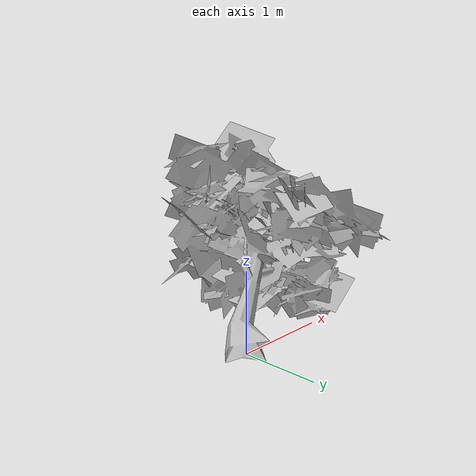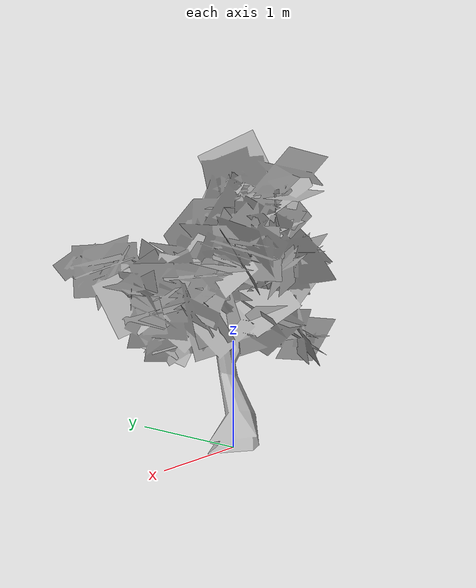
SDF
<?xml version="1.0" ?>
<sdf version="1.6">
  <model name="lowpoly_tree">
    <static>true</static>
    <link name="link">
      <visual name="visual">
        <geometry>
          <mesh>
            <uri>model://lowpoly_tree/Untitled.obj</uri>
            <scale>1.627216 1.627216 1.627216</scale>
          </mesh>
        </geometry>
      </visual>
                  <collision name="collision">
        <geometry>
          <mesh>
            <uri>model://lowpoly_tree/Untitled.obj</uri>
            <scale>1.627216 1.627216 1.627216</scale>
          </mesh>
        </geometry>
      </collision>
    </link>
  </model>
</sdf>
